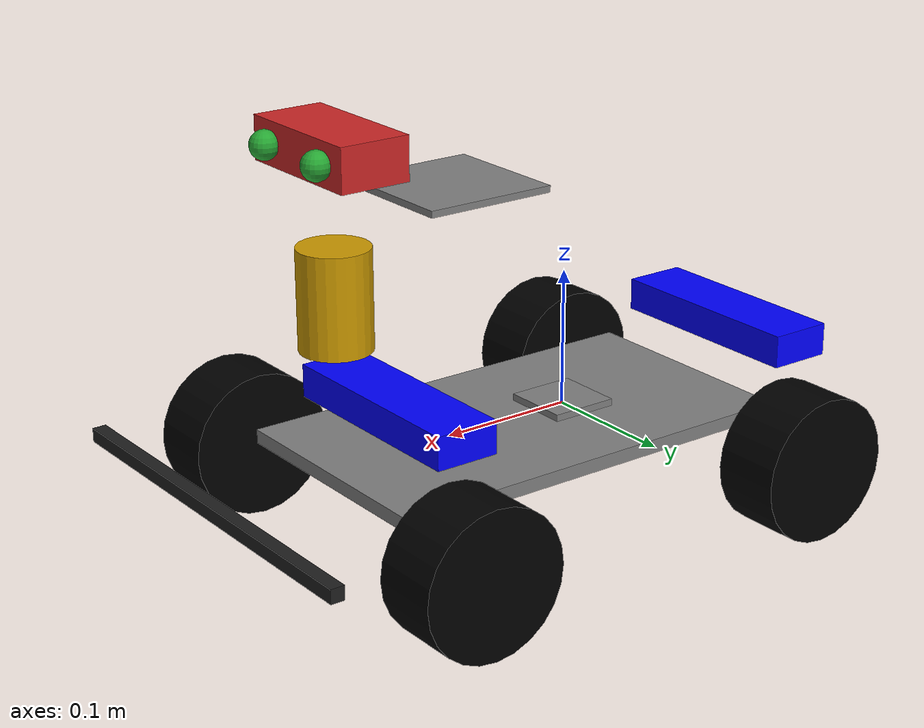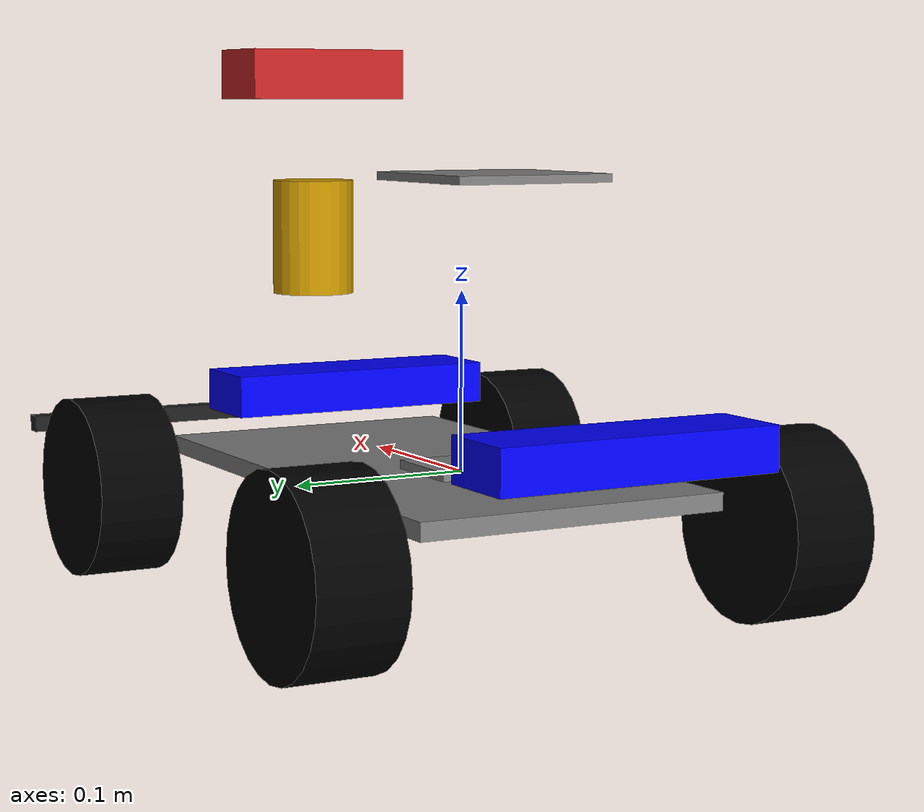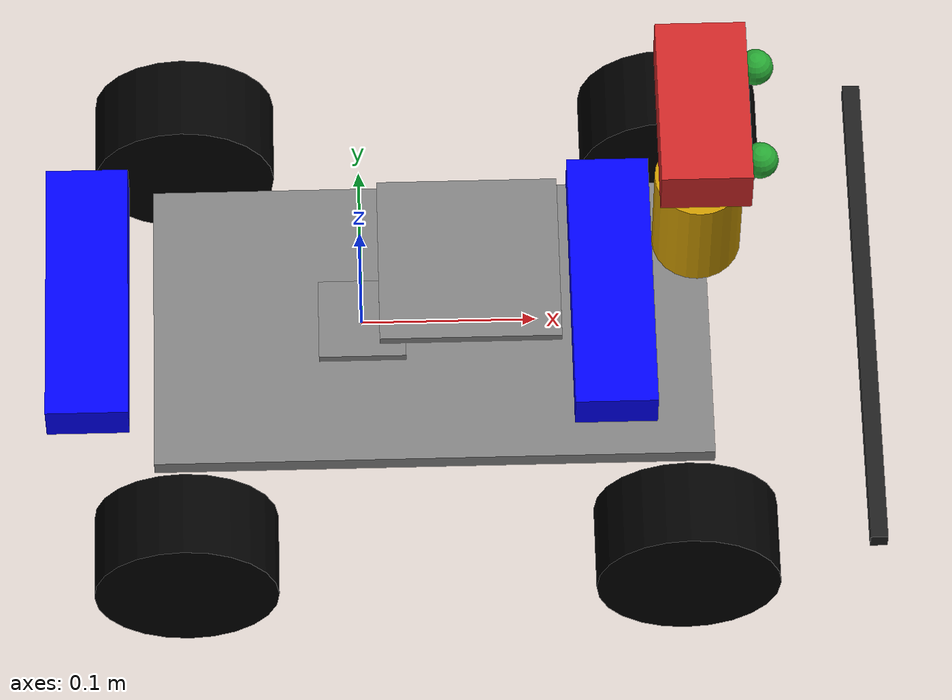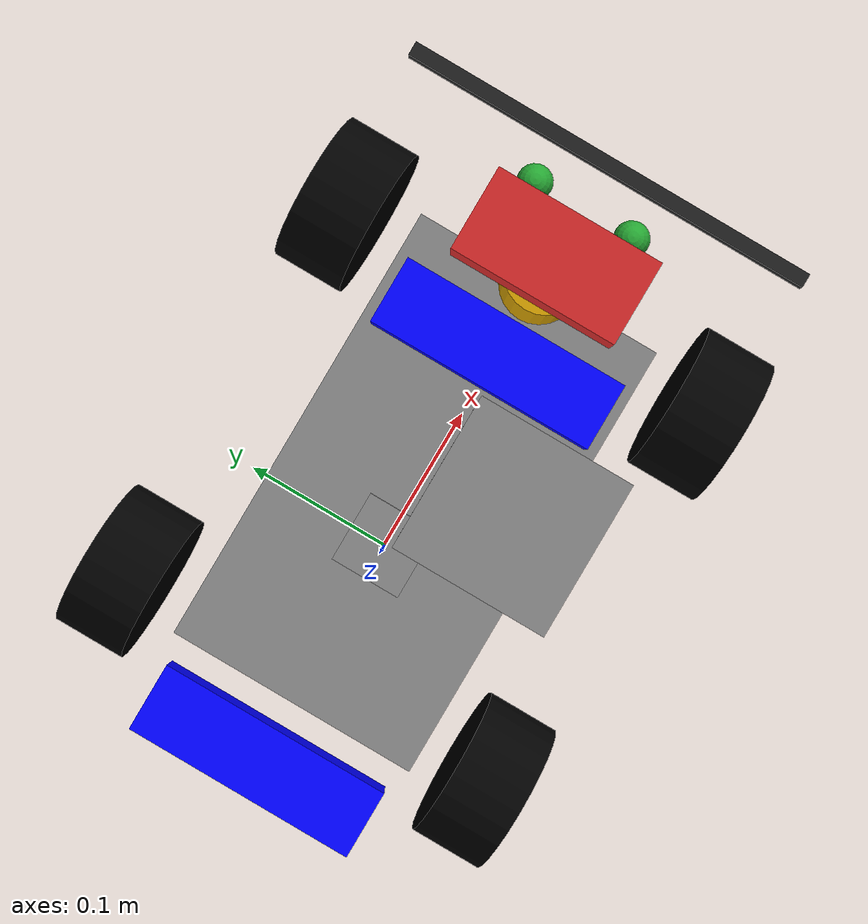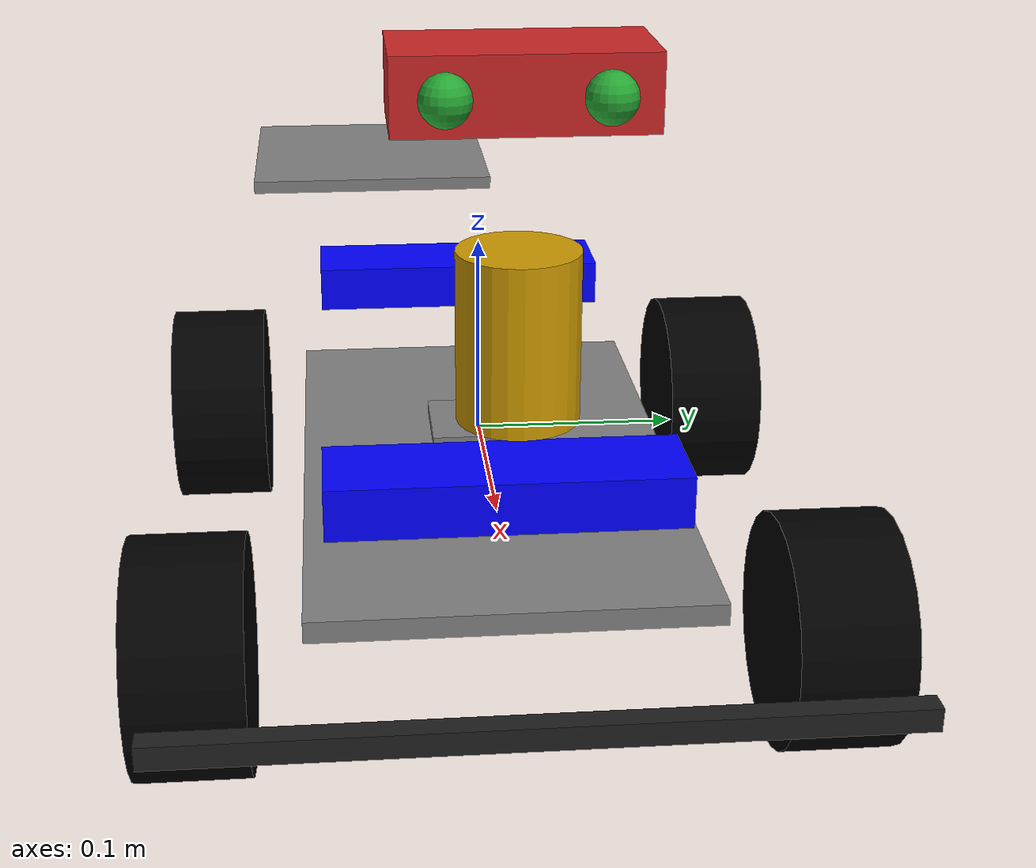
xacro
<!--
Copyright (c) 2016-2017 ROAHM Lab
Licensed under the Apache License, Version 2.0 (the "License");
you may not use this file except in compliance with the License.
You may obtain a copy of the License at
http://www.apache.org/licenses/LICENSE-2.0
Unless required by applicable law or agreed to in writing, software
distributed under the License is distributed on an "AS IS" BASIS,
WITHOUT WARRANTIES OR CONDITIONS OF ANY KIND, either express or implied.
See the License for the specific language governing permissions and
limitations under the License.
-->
<?xml version="1.0"?>

<robot name="rover_roahm" xmlns:xacro="http://www.ros.org/wiki/xacro">
  <!-- Degree-to-radian conversions -->
  <xacro:property name="degrees_45" value="0.785398163"/>
  <xacro:property name="degrees_90" value="1.57079633"/>

  <!-- chassis_length is measured along the x axis, chassis_width
       along the y axis, and chassis_height along the z axis. -->
  <!--xacro:property name="chassis_length" value="0.258"/-->
  <xacro:property name="chassis_length" value="0.32"/>
  <xacro:property name="chassis_width" value="0.18"/>
  <xacro:property name="chassis_height" value="0.01"/>
  <xacro:property name="chassis_mass" value="2.788"/>

  <xacro:property name="battery_x_offset" value="0.055"/>
  <xacro:property name="battery_dist" value="0.065"/>
  <xacro:property name="battery_comp_depth" value="0.02"/>
  <xacro:property name="battery_comp_angle" value="0.34906585"/>
  <xacro:property name="battery_length" value="0.16"/>
  <xacro:property name="battery_width" value="0.047"/>
  <xacro:property name="battery_height" value="0.024"/>
  <xacro:property name="battery_mass" value="0.5025"/>

  <xacro:property name="hub_dia" value="0.0652"/>
  <xacro:property name="tire_dia" value="0.105"/>
  <xacro:property name="tire_width" value="0.05"/>
  <xacro:property name="hex_hub_depth" value="0.005"/>
  <xacro:property name="wheel_mass" value="0.29"/>

  <xacro:property name="wheelbase" value="0.285"/>
  <xacro:property name="hex_hub_dist" value="0.315"/>
  <xacro:property name="axle_length" value="0.02"/>
  <xacro:property name="wheel_travel" value="0.084"/>
  <xacro:property name="shock_z_offset" value="0.0655"/>

  <xacro:property name="shock_eff_limit" value="12.5106"/>
  <xacro:property name="shock_vel_limit" value="1000"/>

  <xacro:property name="axle_eff_limit" value="5.12766"/>
  <xacro:property name="axle_vel_limit" value="244.8696"/>

  <!-- These constants are used to simulate a Traxxas 2056 servo operated at
       6 V. servo_stall_torque is measured in N m. servo_no_load_speed is
       measured in rad/s. -->
  <xacro:property name="servo_stall_torque" value="0.5649"/>
  <xacro:property name="servo_no_load_speed" value="4.553"/>

  <!-- ctrl_period is gazebo_ros_control's control period. Unit: hertz. -->
  <xacro:property name="ctrl_period" value="0.01"/>

  <material name="battery_mat">
    <color rgba="0 0 1 1"/>
  </material>
  <material name="chassis_mat">
    <color rgba="0.5 0.5 0.5 1"/>
  </material>
  <material name="tire_mat">
    <color rgba="0 0 0 1"/>
  </material>
  <material name="lidar_mat">
    <color rgba="0.8 0.6 0 1"/>
  </material>

  <!-- Null inertial element. This is needed to make the model work with
       Gazebo. -->
  <xacro:macro name="null_inertial">
    <inertial>
      <mass value="0.001"/>
      <inertia ixx="0.001" ixy="0" ixz="0" iyy="0.001" iyz="0" izz="0.001"/>
    </inertial>
  </xacro:macro>

  <!-- Inertia of a solid cuboid. Width is measured along the x axis, depth
       along the y axis, and height along the z axis. -->
  <xacro:macro name="solid_cuboid_inertial"
               params="width depth height mass *origin">
    <inertial>
      <xacro:insert_block name="origin"/>
      <mass value="${mass}"/>
      <inertia ixx="${mass * (depth * depth + height * height) / 12}"
               ixy="0" ixz="0"
               iyy="${mass * (width * width + height * height) / 12}"
               iyz="0"
               izz="${mass * (width * width + depth * depth) / 12}"/>
    </inertial>
  </xacro:macro>

  <xacro:macro name="thick_walled_tube_inertial"
               params="inner_rad outer_rad height mass">
    <inertial>
      <mass value="${mass}"/>
      <inertia ixx="${(1 / 12) * mass * (3 * (inner_rad * inner_rad +
                    outer_rad * outer_rad) + height * height)}"
               ixy="0" ixz="0"
               iyy="${(1 / 12) * mass * (3 * (inner_rad * inner_rad +
                    outer_rad * outer_rad) + height * height)}"
               iyz="0"
               izz="${mass * (inner_rad * inner_rad +
                    outer_rad * outer_rad) / 2}"/>
    </inertial>
  </xacro:macro>

  <!-- Battery -->
  <xacro:macro name="battery" params="prefix x_dist">
    <joint name="chassis_to_${prefix}_battery" type="fixed">
      <parent link="chassis"/>
      <child link="${prefix}_battery_offset"/>
      <origin xyz="${x_dist}
                   0
                   0.04"
              rpy="0 0 0"/>
    </joint>

    <link name="${prefix}_battery_offset">
      <xacro:null_inertial/>
    </link>

    <joint name="offset_to_${prefix}_battery" type="fixed">
      <parent link="${prefix}_battery_offset"/>
      <child link="${prefix}_battery"/>
      <origin xyz="${battery_width / 2}
                   0
                   ${(battery_height / 2) - battery_comp_depth}"/>
    </joint>

    <link name="${prefix}_battery">
      <visual>
        <geometry>
          <box size="${battery_width} ${battery_length} ${battery_height}"/>
        </geometry>
        <material name="battery_mat"/>
      </visual>

      <collision>
        <geometry>
          <box size="${battery_width} ${battery_length} ${battery_height}"/>
        </geometry>
      </collision>

      <xacro:solid_cuboid_inertial
         width="${battery_width}" depth="${battery_length}"
         height="${battery_height}" mass="${battery_mass}">
        <origin/>
      </xacro:solid_cuboid_inertial>
    </link>

    <gazebo reference="${prefix}_battery">
      <material>Gazebo/Blue</material>
    </gazebo>
  </xacro:macro>

  <!-- Shock absorber -->
  <xacro:macro name="shock"
               params="lr_prefix fr_prefix lr_reflect fr_reflect child">
    <joint name="${lr_prefix}_${fr_prefix}_shock" type="prismatic">
      <parent link="chassis"/>
      <child link="${child}"/>

      <origin xyz="${fr_reflect * wheelbase / 2}
                   ${lr_reflect * ((hex_hub_dist / 2) - axle_length)}
                   ${(wheel_travel / 2) - shock_z_offset}"/>
      <axis xyz="0 0 -1"/>
      <limit lower="${-wheel_travel / 2}" upper="${wheel_travel / 2}"
             effort="${shock_eff_limit}" velocity="${shock_vel_limit}"/>
    </joint>
    <transmission name="${lr_prefix}_${fr_prefix}_shock_trans">
      <type>transmission_interface/SimpleTransmission</type>
      <joint name="${lr_prefix}_${fr_prefix}_shock"/>
      <actuator name="${lr_prefix}_${fr_prefix}_shock_act">
        <hardwareInterface>EffortJointInterface</hardwareInterface>
        <mechanicalReduction>1</mechanicalReduction>
      </actuator>
    </transmission>
  </xacro:macro>

  <!-- The "wheel" macro defines an axle carrier, axle, and wheel. -->
  <xacro:macro name="wheel" params="lr_prefix fr_prefix lr_reflect">
    <link name="${lr_prefix}_${fr_prefix}_axle_carrier">
      <xacro:null_inertial/>
    </link>

    <!-- The left and right axles have the same axis so that identical
         rotation values cause the wheels to rotate in the same direction. -->
    <joint name="${lr_prefix}_${fr_prefix}_axle" type="continuous">
      <parent link="${lr_prefix}_${fr_prefix}_axle_carrier"/>
      <child link="${lr_prefix}_${fr_prefix}_wheel"/>
      <origin rpy="${degrees_90} 0 0"/>
      <axis xyz="0 0 -1"/>
      <limit effort="${axle_eff_limit}" velocity="${axle_vel_limit}"/>
    </joint>
    <transmission name="${lr_prefix}_${fr_prefix}_axle_trans">
      <type>transmission_interface/SimpleTransmission</type>
      <joint name="${lr_prefix}_${fr_prefix}_axle"/>
      <actuator name="${lr_prefix}_${fr_prefix}_axle_act">
        <hardwareInterface>EffortJointInterface</hardwareInterface>
        <mechanicalReduction>1</mechanicalReduction>
      </actuator>
    </transmission>

    <link name="${lr_prefix}_${fr_prefix}_wheel">
      <visual>
        <origin xyz="0
                     ${lr_reflect * (axle_length - (tire_width /
                     2 - hex_hub_depth))}
                     0"/>
        <geometry>
          <cylinder radius="${tire_dia / 2}" length="${tire_width}"/>
        </geometry>
        <material name="tire_mat"/>
      </visual>

      <collision>
        <origin xyz="0
                     ${lr_reflect * (axle_length - (tire_width /
                     2 - hex_hub_depth))}
                     0"/>
        <geometry>
          <cylinder radius="${tire_dia / 2}" length="${tire_width}"/>
        </geometry>
      </collision>

      <xacro:thick_walled_tube_inertial
          inner_rad="${hub_dia / 2}" outer_rad="${tire_dia / 2}"
          height="${tire_width}" mass="${wheel_mass}"/>
    </link>

    <gazebo reference="${lr_prefix}_${fr_prefix}_wheel">
      <material>Gazebo/Black</material>
    </gazebo>
  </xacro:macro>

  <!-- Front wheel -->
  <xacro:macro name="front_wheel"
               params="lr_prefix fr_prefix lr_reflect fr_reflect">
    <xacro:shock lr_prefix="${lr_prefix}" fr_prefix="${fr_prefix}"
                 lr_reflect="${lr_reflect}" fr_reflect="${fr_reflect}"
                 child="${lr_prefix}_steering_link"/>

    <link name="${lr_prefix}_steering_link">
      <xacro:null_inertial/>
    </link>

    <joint name="${lr_prefix}_steering_joint" type="revolute">
      <parent link="${lr_prefix}_steering_link"/>
      <child link="${lr_prefix}_${fr_prefix}_axle_carrier"/>
      <axis xyz="0 0 1"/>
      <limit lower="${-degrees_45}" upper="${degrees_45}"
             effort="${servo_stall_torque}" velocity="${servo_no_load_speed}"/>
    </joint>
    <xacro:wheel lr_prefix="${lr_prefix}" fr_prefix="${fr_prefix}"
                 lr_reflect="${lr_reflect}"/>
  </xacro:macro>

  <!-- Rear wheel -->
  <xacro:macro name="rear_wheel"
               params="lr_prefix fr_prefix lr_reflect fr_reflect">
    <xacro:shock lr_prefix="${lr_prefix}" fr_prefix="${fr_prefix}"
                 lr_reflect="${lr_reflect}" fr_reflect="${fr_reflect}"
                 child="${lr_prefix}_${fr_prefix}_axle_carrier"/>
    <xacro:wheel lr_prefix="${lr_prefix}" fr_prefix="${fr_prefix}"
                 lr_reflect="${lr_reflect}"/>
  </xacro:macro>

  <!-- base_link must have geometry so that its axes can be displayed in
       rviz. -->
  <link name="base_link">
    <visual>
      <geometry>
        <box size="0.05 0.05 0.01"/>
      </geometry>
      <material name="chassis_mat"/>
    </visual>
  </link>
  <gazebo reference="base_link">
    <material>Gazebo/Green</material>
  </gazebo>

  <link name="bumper_link">
	    <visual>
	        <geometry>
	            <box size="0.01 0.3 0.01"/>
	        </geometry>
	    </visual>
	    <collision>
	        <!-- origin is relative -->
	        <geometry>
	            <box size="0.01 0.3 0.01"/>
	        </geometry>
	    </collision>
	</link>
	<gazebo reference="bumper_link">
    	<material>Gazebo/Black</material>
  	</gazebo>
   <joint name="baselink_to_bumper" type="fixed">
    <parent link="base_link"/>
    <child link="bumper_link"/>
    <origin xyz="0.29 0.0 0.0" rpy="0.0 0.0 0.0"/>
   </joint>

  <link name="eye_link">
	    <visual>
	        <geometry>
	            <box size="0.05 0.1 0.03"/>
	        </geometry>
	    </visual>
	    <collision>
	        <!-- origin is relative -->
	        <geometry>
	            <box size="0.05 0.1 0.03"/>
	        </geometry>
	    </collision>
	</link>
	  <gazebo reference="eye_link">
    <material>Gazebo/Red</material>
  </gazebo>

	<link name="left_eye">
	    <visual>
	        <geometry>
	            <sphere radius="0.01"/>
	        </geometry>
	    </visual>
	</link>
	<gazebo reference="left_eye">
    	<material>Gazebo/Green</material>
  	</gazebo>
	<link name="right_eye">
	    <visual>
	        <geometry>
	            <sphere radius="0.01"/>
	        </geometry>
	    </visual>
	</link>
	<gazebo reference="right_eye">
    	<material>Gazebo/Green</material>
  	</gazebo>

  <joint name="left_eye_to_head" type="fixed">
  <parent link="eye_link"/>
  <child link="left_eye"/>
  <origin xyz="0.03 0.03 0.0" rpy="0.0 0.0 0.0"/>
  </joint>

  <joint name="right_eye_to_head" type="fixed">
  <parent link="eye_link"/>
  <child link="right_eye"/>
  <origin xyz="0.03 -0.03 0.0" rpy="0.0 0.0 0.0"/>
  </joint>

  <joint name="base_link_to_eye" type="fixed">
  <parent link="base_link"/>
  <child link="eye_link"/>
  <origin xyz="${chassis_length /2 + 0.03} 0.0 0.22" rpy="0.0 0.0 0.0"/>
  </joint>

  <joint name="imu_joint" type="fixed">
  <axis xyz="1 0 0"/>
  <origin xyz="0.06 -0.054 0.16" rpy="3.1416 0 0"/>
  <parent link="base_link"/>
  <child link="imu"/>
  </joint>

  <link name="imu">
    <inertial>
      <mass value="0.001"/>
      <origin rpy="0 0 0" xyz="0 0 0"/>
      <inertia ixx="0.0001" ixy="0" ixz="0" iyy="0.000001" iyz="0" izz="0.0001"/>
    </inertial>
    <visual>
      <origin rpy="0 0 0" xyz="0 0 0"/>
      <geometry>
        <box size="0.1 0.1 0.005"/>
      </geometry>
      <material name="chassis_mat"/>
    </visual>
    <collision>
      <origin rpy="0 0 0" xyz="0 0 0"/>
      <geometry>
        <box size=".001 .001 .001"/>
      </geometry>
    </collision>
  </link>

  <joint name="lidar_joint" type="fixed">
    <axis xyz="1 0 0"/>
    <origin xyz="0.19 0 0.12" rpy="0 0 0"/>
    <parent link="base_link"/>
    <child link="lidar_link"/>
  </joint>

  <link name="lidar_link">
    <inertial>
      <mass value="0.001"/>
      <origin rpy="0 0 0" xyz="0 0 0"/>
      <inertia ixx="0.0001" ixy="0" ixz="0" iyy="0.000001" iyz="0" izz="0.0001"/>
    </inertial>
    <visual>
      <origin rpy="0 0 0" xyz="0 0 0"/>
      <geometry>
        <cylinder length="0.07" radius="0.025"/>
      </geometry>
      <material name="lidar_mat"/>
    </visual>
    <collision>
      <origin rpy="0 0 0" xyz="0 0 0"/>
      <geometry>
        <box size=".001 .001 .001"/>
      </geometry>
    </collision>
  </link>

  <!-- Chassis -->
  <link name="chassis">
    <visual>
      <origin xyz="0 0 ${-chassis_height / 2}"/>
      <geometry>
        <box size="${chassis_length} ${chassis_width} ${chassis_height}"/>
      </geometry>
      <material name="chassis_mat"/>
    </visual>

    <collision>
      <origin xyz="0 0 ${-chassis_height / 2}"/>
      <geometry>
        <box size="${chassis_length} ${chassis_width} ${chassis_height}"/>
      </geometry>
    </collision>

    <xacro:solid_cuboid_inertial
        width="${chassis_length}" depth="${chassis_width}"
        height="${chassis_height}" mass="${chassis_mass}">
      <origin xyz="0 0 ${-chassis_height / 2}"/>
    </xacro:solid_cuboid_inertial>
  </link>
  <gazebo reference="chassis">
    <material>Gazebo/Grey</material>
  </gazebo>

  <joint name="base_link_to_chasis" type="fixed">
    <parent link="base_link"/>
    <child link="chassis"/>
    <origin xyz="0.04 0.0 0.0" rpy="0.0 0.0 0.0"/>
  </joint>

  <!-- Batteries -->
  <xacro:battery prefix="front" x_dist="0.08"/>
  <xacro:battery prefix="rear" x_dist="-0.22"/>

  <!-- Wheels -->
  <xacro:front_wheel lr_prefix="left" fr_prefix="front"
                     lr_reflect="1" fr_reflect="1"/>
  <xacro:front_wheel lr_prefix="right" fr_prefix="front"
                     lr_reflect="-1" fr_reflect="1"/>
  <xacro:rear_wheel lr_prefix="left" fr_prefix="rear"
                    lr_reflect="1" fr_reflect="-1"/>
  <xacro:rear_wheel lr_prefix="right" fr_prefix="rear"
                    lr_reflect="-1" fr_reflect="-1"/>

</robot>
